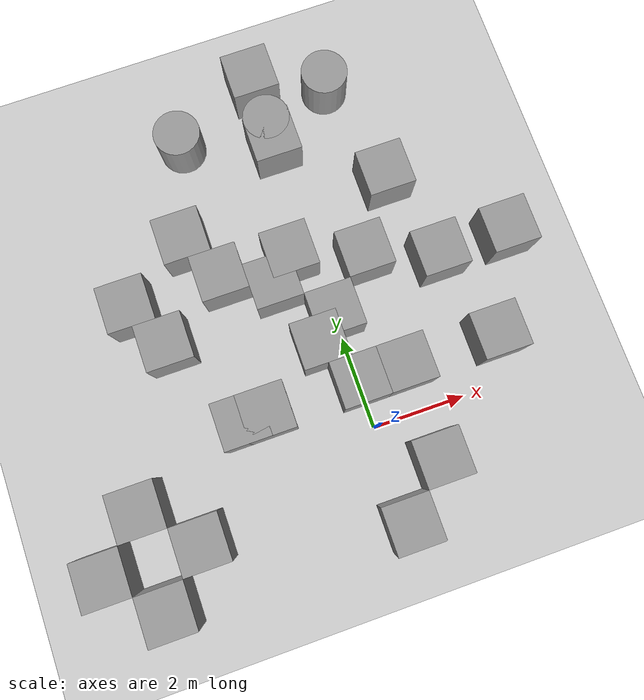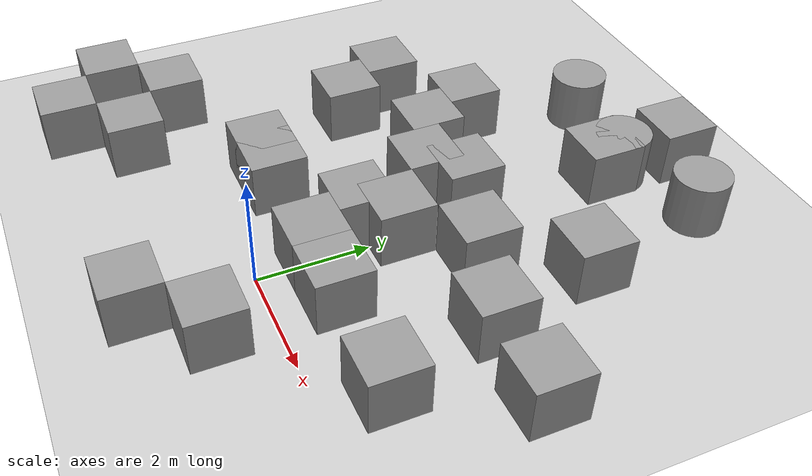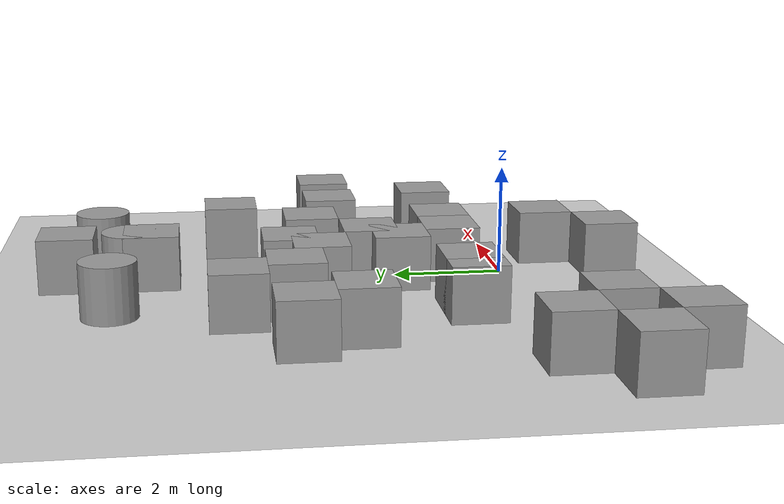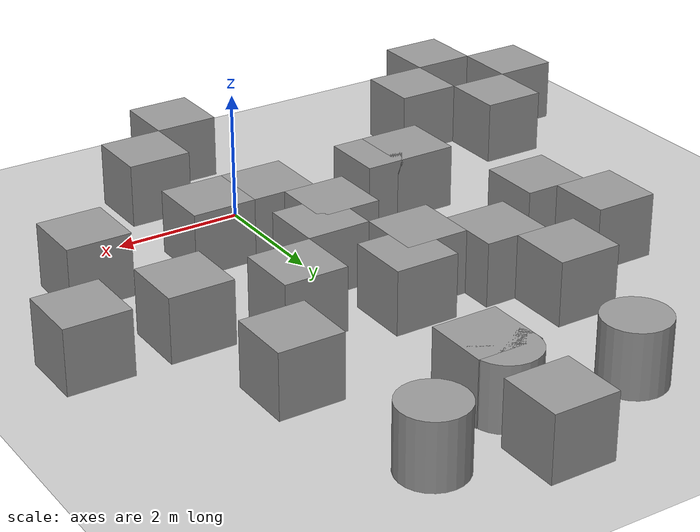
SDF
<sdf version="1.4">
 <world name="default">
  <light name="sun" type="directional">
   <pose>0 0 10 0 -0 0</pose>
   <diffuse>0.8 0.8 0.8 1</diffuse>
   <specular>0.1 0.1 0.1 1</specular>
   <attenuation>
    <range>1000</range>
    <constant>0.9</constant>
    <linear>0.01</linear>
    <quadratic>0.001</quadratic>
   </attenuation>
   <direction>-0.5 0.5 -1</direction>
  </light>
  <model name="ground_plane">
   <static>1</static>
   <link name="link">
    <collision name="collision">
     <geometry><plane><normal>0 0 1</normal><size>100 100</size></plane></geometry>
     <surface><friction><ode><mu>100</mu><mu2>50</mu2></ode></friction></surface>
    </collision>
    <visual name="visual">
     <cast_shadows>0</cast_shadows>
     <geometry><plane><normal>0 0 1</normal><size>100 100</size></plane></geometry>
     <material>
      <script><uri>file://media/materials/scripts/gazebo.material</uri><name>Gazebo/Grey</name></script>
     </material>
    </visual>
    <kinematic>1</kinematic>
    <velocity_decay><linear>0</linear><angular>0</angular></velocity_decay>
   </link>
  </model>
  <physics type="ode">
   <max_step_size>0.001</max_step_size>
   <real_time_factor>1</real_time_factor>
   <real_time_update_rate>1000</real_time_update_rate>
   <gravity>0 0 -9.8</gravity>
  </physics>
  <scene><ambient>0.4 0.4 0.4 1</ambient><background>0.7 0.7 0.7 1</background><shadows>1</shadows></scene>
  <spherical_coordinates>
   <surface_model>EARTH_WGS84</surface_model>
   <latitude_deg>0</latitude_deg>
   <longitude_deg>0</longitude_deg>
   <elevation>0</elevation>
   <heading_deg>0</heading_deg>
  </spherical_coordinates>
  <model name="unit_box_1">
   <pose>0 8 0.500001 1e-05 -0 0</pose>
   <link name="link">
    <inertial>
     <mass>1</mass>
     <inertia><ixx>1</ixx><ixy>0</ixy><ixz>0</ixz><iyy>1</iyy><iyz>0</iyz><izz>1</izz></inertia>
    </inertial>
    <collision name="collision"><geometry><box><size>8 0 1</size></box></geometry></collision>
    <visual name="visual">
     <geometry><box><size>1 1 1</size></box></geometry>
     <material>
      <script><uri>file://media/materials/scripts/gazebo.material</uri><name>Gazebo/Grey</name></script>
     </material>
    </visual>
    <velocity_decay><linear>0</linear><angular>0</angular></velocity_decay>
    <kinematic>1</kinematic>
   </link>
   <static>1</static>
  </model>
  <model name="unit_box_4">
   <pose>4 3 0.5 0 -0 0</pose>
   <link name="link">
    <inertial>
     <mass>1</mass>
     <inertia><ixx>1</ixx><ixy>0</ixy><ixz>0</ixz><iyy>1</iyy><iyz>0</iyz><izz>1</izz></inertia>
    </inertial>
    <collision name="collision"><geometry><box><size>0 10 1</size></box></geometry></collision>
    <visual name="visual">
     <geometry><box><size>1 1 1</size></box></geometry>
     <material>
      <script><uri>file://media/materials/scripts/gazebo.material</uri><name>Gazebo/Grey</name></script>
     </material>
    </visual>
    <velocity_decay><linear>0</linear><angular>0</angular></velocity_decay>
    <kinematic>1</kinematic>
   </link>
   <static>1</static>
  </model>
  <model name="unit_box_6">
   <pose>-4 4 0.5 0 -0 0</pose>
   <link name="link">
    <inertial>
     <mass>1</mass>
     <inertia><ixx>1</ixx><ixy>0</ixy><ixz>0</ixz><iyy>1</iyy><iyz>0</iyz><izz>1</izz></inertia>
    </inertial>
    <collision name="collision"><geometry><box><size>0 8 1</size></box></geometry></collision>
    <visual name="visual">
     <geometry><box><size>1 1 1</size></box></geometry>
     <material>
      <script><uri>file://media/materials/scripts/gazebo.material</uri><name>Gazebo/Grey</name></script>
     </material>
    </visual>
    <velocity_decay><linear>0</linear><angular>0</angular></velocity_decay>
    <kinematic>1</kinematic>
   </link>
   <static>1</static>
  </model>
  <model name="unit_box_7">
   <pose>0 -2 0.5 0 -0 0</pose>
   <link name="link">
    <inertial>
     <mass>1</mass>
     <inertia><ixx>1</ixx><ixy>0</ixy><ixz>0</ixz><iyy>1</iyy><iyz>0</iyz><izz>1</izz></inertia>
    </inertial>
    <collision name="collision"><geometry><box><size>8 0 1</size></box></geometry></collision>
    <visual name="visual">
     <geometry><box><size>1 1 1</size></box></geometry>
     <material>
      <script><uri>file://media/materials/scripts/gazebo.material</uri><name>Gazebo/Grey</name></script>
     </material>
    </visual>
    <velocity_decay><linear>0</linear><angular>0</angular></velocity_decay>
    <kinematic>1</kinematic>
   </link>
   <static>1</static>
  </model>
  <model name="unit_box_9">
   <pose>-6 -1 0.5 0 -0 0</pose>
   <link name="link">
    <inertial>
     <mass>1</mass>
     <inertia><ixx>1</ixx><ixy>0</ixy><ixz>0</ixz><iyy>1</iyy><iyz>0</iyz><izz>1</izz></inertia>
    </inertial>
    <collision name="collision"><geometry><box><size>0 2 1</size></box></geometry></collision>
    <visual name="visual">
     <geometry><box><size>1 1 1</size></box></geometry>
     <material>
      <script><uri>file://media/materials/scripts/gazebo.material</uri><name>Gazebo/Grey</name></script>
     </material>
    </visual>
    <velocity_decay><linear>0</linear><angular>0</angular></velocity_decay>
    <kinematic>1</kinematic>
   </link>
   <static>1</static>
  </model>
  <model name="unit_box_10">
   <pose>-5 -2 0.5 0 -0 0</pose>
   <link name="link">
    <inertial>
     <mass>1</mass>
     <inertia><ixx>1</ixx><ixy>0</ixy><ixz>0</ixz><iyy>1</iyy><iyz>0</iyz><izz>1</izz></inertia>
    </inertial>
    <collision name="collision"><geometry><box><size>2 0 1</size></box></geometry></collision>
    <visual name="visual">
     <geometry><box><size>1 1 1</size></box></geometry>
     <material>
      <script><uri>file://media/materials/scripts/gazebo.material</uri><name>Gazebo/Grey</name></script>
     </material>
    </visual>
    <velocity_decay><linear>0</linear><angular>0</angular></velocity_decay>
    <kinematic>1</kinematic>
   </link>
   <static>1</static>
  </model>
  <model name="unit_box_11">
   <pose>-5 0 0.5 0 -0 0</pose>
   <link name="link">
    <inertial>
     <mass>1</mass>
     <inertia><ixx>1</ixx><ixy>0</ixy><ixz>0</ixz><iyy>1</iyy><iyz>0</iyz><izz>1</izz></inertia>
    </inertial>
    <collision name="collision"><geometry><box><size>2 0 1</size></box></geometry></collision>
    <visual name="visual">
     <geometry><box><size>1 1 1</size></box></geometry>
     <material>
      <script><uri>file://media/materials/scripts/gazebo.material</uri><name>Gazebo/Grey</name></script>
     </material>
    </visual>
    <velocity_decay><linear>0</linear><angular>0</angular></velocity_decay>
    <kinematic>1</kinematic>
   </link>
   <static>1</static>
  </model>
  <model name="unit_box_12">
   <pose>-4 -1 0.5 0 -0 0</pose>
   <link name="link">
    <inertial>
     <mass>1</mass>
     <inertia><ixx>1</ixx><ixy>0</ixy><ixz>0</ixz><iyy>1</iyy><iyz>0</iyz><izz>1</izz></inertia>
    </inertial>
    <collision name="collision"><geometry><box><size>4 0 1</size></box></geometry></collision>
    <visual name="visual">
     <geometry><box><size>1 1 1</size></box></geometry>
     <material>
      <script><uri>file://media/materials/scripts/gazebo.material</uri><name>Gazebo/Grey</name></script>
     </material>
    </visual>
    <velocity_decay><linear>0</linear><angular>0</angular></velocity_decay>
    <kinematic>1</kinematic>
   </link>
   <static>1</static>
  </model>
  <model name="unit_box_13">
   <pose>-2 1 0.5 0 -0 0</pose>
   <link name="link">
    <inertial>
     <mass>1</mass>
     <inertia><ixx>1</ixx><ixy>0</ixy><ixz>0</ixz><iyy>1</iyy><iyz>0</iyz><izz>1</izz></inertia>
    </inertial>
    <collision name="collision"><geometry><box><size>0 4 1</size></box></geometry></collision>
    <visual name="visual">
     <geometry><box><size>1 1 1</size></box></geometry>
     <material>
      <script><uri>file://media/materials/scripts/gazebo.material</uri><name>Gazebo/Grey</name></script>
     </material>
    </visual>
    <velocity_decay><linear>0</linear><angular>0</angular></velocity_decay>
    <kinematic>1</kinematic>
   </link>
   <static>1</static>
  </model>
  <model name="unit_box_14">
   <pose>-2.5185 1 0.5 0 -0 0</pose>
   <link name="link">
    <inertial>
     <mass>1</mass>
     <inertia><ixx>1</ixx><ixy>0</ixy><ixz>0</ixz><iyy>1</iyy><iyz>0</iyz><izz>1</izz></inertia>
    </inertial>
    <collision name="collision"><geometry><box><size>1 0 1</size></box></geometry></collision>
    <visual name="visual">
     <geometry><box><size>1 1 1</size></box></geometry>
     <material>
      <script><uri>file://media/materials/scripts/gazebo.material</uri><name>Gazebo/Grey</name></script>
     </material>
    </visual>
    <velocity_decay><linear>0</linear><angular>0</angular></velocity_decay>
    <kinematic>1</kinematic>
   </link>
   <static>1</static>
  </model>
  <model name="unit_box_15">
   <pose>-3.49392 3 0.5 0 -0 0</pose>
   <link name="link">
    <inertial>
     <mass>1</mass>
     <inertia><ixx>1</ixx><ixy>0</ixy><ixz>0</ixz><iyy>1</iyy><iyz>0</iyz><izz>1</izz></inertia>
    </inertial>
    <collision name="collision"><geometry><box><size>1 0 1</size></box></geometry></collision>
    <visual name="visual">
     <geometry><box><size>1 1 1</size></box></geometry>
     <material>
      <script><uri>file://media/materials/scripts/gazebo.material</uri><name>Gazebo/Grey</name></script>
     </material>
    </visual>
    <velocity_decay><linear>0</linear><angular>0</angular></velocity_decay>
    <kinematic>1</kinematic>
   </link>
   <static>1</static>
  </model>
  <model name="unit_box_17">
   <pose>1 -1 0.5 0 -0 0</pose>
   <link name="link">
    <inertial>
     <mass>1</mass>
     <inertia><ixx>1</ixx><ixy>0</ixy><ixz>0</ixz><iyy>1</iyy><iyz>0</iyz><izz>1</izz></inertia>
    </inertial>
    <collision name="collision"><geometry><box><size>4 0 1</size></box></geometry></collision>
    <visual name="visual">
     <geometry><box><size>1 1 1</size></box></geometry>
     <material>
      <script><uri>file://media/materials/scripts/gazebo.material</uri><name>Gazebo/Grey</name></script>
     </material>
    </visual>
    <velocity_decay><linear>0</linear><angular>0</angular></velocity_decay>
    <kinematic>1</kinematic>
   </link>
   <static>1</static>
  </model>
  <model name="unit_box_18">
   <pose>1 1 0.5 0 -0 0</pose>
   <link name="link">
    <inertial>
     <mass>1</mass>
     <inertia><ixx>1</ixx><ixy>0</ixy><ixz>0</ixz><iyy>1</iyy><iyz>0</iyz><izz>1</izz></inertia>
    </inertial>
    <collision name="collision"><geometry><box><size>0 4 1</size></box></geometry></collision>
    <visual name="visual">
     <geometry><box><size>1 1 1</size></box></geometry>
     <material>
      <script><uri>file://media/materials/scripts/gazebo.material</uri><name>Gazebo/Grey</name></script>
     </material>
    </visual>
    <velocity_decay><linear>0</linear><angular>0</angular></velocity_decay>
    <kinematic>1</kinematic>
   </link>
   <static>1</static>
  </model>
  <model name="unit_box_19">
   <pose>0 6.48628 0.5 0 -0 0</pose>
   <link name="link">
    <inertial>
     <mass>1</mass>
     <inertia><ixx>1</ixx><ixy>0</ixy><ixz>0</ixz><iyy>1</iyy><iyz>0</iyz><izz>1</izz></inertia>
    </inertial>
    <collision name="collision"><geometry><box><size>6 0 1</size></box></geometry></collision>
    <visual name="visual">
     <geometry><box><size>1 1 1</size></box></geometry>
     <material>
      <script><uri>file://media/materials/scripts/gazebo.material</uri><name>Gazebo/Grey</name></script>
     </material>
    </visual>
    <velocity_decay><linear>0</linear><angular>0</angular></velocity_decay>
    <kinematic>1</kinematic>
   </link>
   <static>1</static>
  </model>
  <model name="unit_cylinder_1">
   <pose>1.50808 7.45136 0.5 0 -0 0</pose>
   <link name="link">
    <inertial>
     <mass>1</mass>
     <inertia><ixx>1</ixx><ixy>0</ixy><ixz>0</ixz><iyy>1</iyy><iyz>0</iyz><izz>1</izz></inertia>
    </inertial>
    <collision name="collision">
     <geometry><cylinder><radius>0.28875</radius><length>1</length></cylinder></geometry>
    </collision>
    <visual name="visual">
     <geometry><cylinder><radius>0.5</radius><length>1</length></cylinder></geometry>
     <material>
      <script><uri>file://media/materials/scripts/gazebo.material</uri><name>Gazebo/Grey</name></script>
     </material>
    </visual>
    <velocity_decay><linear>0</linear><angular>0</angular></velocity_decay>
    <kinematic>1</kinematic>
   </link>
   <static>1</static>
  </model>
  <model name="unit_cylinder_2">
   <pose>0 6.8851 0.5 0 -0 0</pose>
   <link name="link">
    <inertial>
     <mass>1</mass>
     <inertia><ixx>1</ixx><ixy>0</ixy><ixz>0</ixz><iyy>1</iyy><iyz>0</iyz><izz>1</izz></inertia>
    </inertial>
    <collision name="collision">
     <geometry><cylinder><radius>0.378183</radius><length>0.756367</length></cylinder></geometry>
    </collision>
    <visual name="visual">
     <geometry><cylinder><radius>0.5</radius><length>1</length></cylinder></geometry>
     <material>
      <script><uri>file://media/materials/scripts/gazebo.material</uri><name>Gazebo/Grey</name></script>
     </material>
    </visual>
    <velocity_decay><linear>0</linear><angular>0</angular></velocity_decay>
    <kinematic>1</kinematic>
   </link>
   <static>1</static>
  </model>
  <model name="unit_cylinder_3">
   <pose>-1.90364 7.16199 0.5 0 -0 0</pose>
   <link name="link">
    <inertial>
     <mass>1</mass>
     <inertia><ixx>1</ixx><ixy>0</ixy><ixz>0</ixz><iyy>1</iyy><iyz>0</iyz><izz>1</izz></inertia>
    </inertial>
    <collision name="collision">
     <geometry><cylinder><radius>0.247288</radius><length>1</length></cylinder></geometry>
    </collision>
    <visual name="visual">
     <geometry><cylinder><radius>0.5</radius><length>1</length></cylinder></geometry>
     <material>
      <script><uri>file://media/materials/scripts/gazebo.material</uri><name>Gazebo/Grey</name></script>
     </material>
    </visual>
    <velocity_decay><linear>0</linear><angular>0</angular></velocity_decay>
    <kinematic>1</kinematic>
   </link>
   <static>1</static>
  </model>
  <model name="unit_box_20">
   <pose>3 1 0.5 0 -0 0</pose>
   <link name="link">
    <inertial>
     <mass>1</mass>
     <inertia><ixx>1</ixx><ixy>0</ixy><ixz>0</ixz><iyy>1</iyy><iyz>0</iyz><izz>1</izz></inertia>
    </inertial>
    <collision name="collision"><geometry><box><size>0 4 1</size></box></geometry></collision>
    <visual name="visual">
     <geometry><box><size>1 1 1</size></box></geometry>
     <material>
      <script><uri>file://media/materials/scripts/gazebo.material</uri><name>Gazebo/Grey</name></script>
     </material>
    </visual>
    <velocity_decay><linear>0</linear><angular>0</angular></velocity_decay>
    <kinematic>1</kinematic>
   </link>
   <static>1</static>
  </model>
  <model name="unit_box_21">
   <pose>2.47486 3 0.5 0 -0 0</pose>
   <link name="link">
    <inertial>
     <mass>1</mass>
     <inertia><ixx>1</ixx><ixy>0</ixy><ixz>0</ixz><iyy>1</iyy><iyz>0</iyz><izz>1</izz></inertia>
    </inertial>
    <collision name="collision"><geometry><box><size>1 0 1</size></box></geometry></collision>
    <visual name="visual">
     <geometry><box><size>1 1 1</size></box></geometry>
     <material>
      <script><uri>file://media/materials/scripts/gazebo.material</uri><name>Gazebo/Grey</name></script>
     </material>
    </visual>
    <velocity_decay><linear>0</linear><angular>0</angular></velocity_decay>
    <kinematic>1</kinematic>
   </link>
   <static>1</static>
  </model>
  <model name="unit_box_22">
   <pose>0 1 0.5 0 -0 0</pose>
   <link name="link">
    <inertial>
     <mass>1</mass>
     <inertia><ixx>1</ixx><ixy>0</ixy><ixz>0</ixz><iyy>1</iyy><iyz>0</iyz><izz>1</izz></inertia>
    </inertial>
    <collision name="collision"><geometry><box><size>2 0 1</size></box></geometry></collision>
    <visual name="visual">
     <geometry><box><size>1 1 1</size></box></geometry>
     <material>
      <script><uri>file://media/materials/scripts/gazebo.material</uri><name>Gazebo/Grey</name></script>
     </material>
    </visual>
    <velocity_decay><linear>0</linear><angular>0</angular></velocity_decay>
    <kinematic>1</kinematic>
   </link>
   <static>1</static>
  </model>
  <model name="unit_box_23">
   <pose>0 2.50196 0.5 0 -0 0</pose>
   <link name="link">
    <inertial>
     <mass>1</mass>
     <inertia><ixx>1</ixx><ixy>0</ixy><ixz>0</ixz><iyy>1</iyy><iyz>0</iyz><izz>1</izz></inertia>
    </inertial>
    <collision name="collision"><geometry><box><size>0 1 1</size></box></geometry></collision>
    <visual name="visual">
     <geometry><box><size>1 1 1</size></box></geometry>
     <material>
      <script><uri>file://media/materials/scripts/gazebo.material</uri><name>Gazebo/Grey</name></script>
     </material>
    </visual>
    <velocity_decay><linear>0</linear><angular>0</angular></velocity_decay>
    <kinematic>1</kinematic>
   </link>
   <static>1</static>
  </model>
  <model name="unit_box_24">
   <pose>-0.502878 2 0.5 0 -0 0</pose>
   <link name="link">
    <inertial>
     <mass>1</mass>
     <inertia><ixx>1</ixx><ixy>0</ixy><ixz>0</ixz><iyy>1</iyy><iyz>0</iyz><izz>1</izz></inertia>
    </inertial>
    <collision name="collision"><geometry><box><size>1 0 1</size></box></geometry></collision>
    <visual name="visual">
     <geometry><box><size>1 1 1</size></box></geometry>
     <material>
      <script><uri>file://media/materials/scripts/gazebo.material</uri><name>Gazebo/Grey</name></script>
     </material>
    </visual>
    <velocity_decay><linear>0</linear><angular>0</angular></velocity_decay>
    <kinematic>1</kinematic>
   </link>
   <static>1</static>
  </model>
  <model name="unit_box_25">
   <pose>2 5 0.5 0 -0 0</pose>
   <link name="link">
    <inertial>
     <mass>1</mass>
     <inertia><ixx>1</ixx><ixy>0</ixy><ixz>0</ixz><iyy>1</iyy><iyz>0</iyz><izz>1</izz></inertia>
    </inertial>
    <collision name="collision"><geometry><box><size>4 0 1</size></box></geometry></collision>
    <visual name="visual">
     <geometry><box><size>1 1 1</size></box></geometry>
     <material>
      <script><uri>file://media/materials/scripts/gazebo.material</uri><name>Gazebo/Grey</name></script>
     </material>
    </visual>
    <velocity_decay><linear>0</linear><angular>0</angular></velocity_decay>
    <kinematic>1</kinematic>
   </link>
   <static>1</static>
  </model>
  <model name="unit_box_27">
   <pose>-2 4 0.5 0 -0 0</pose>
   <link name="link">
    <inertial>
     <mass>1</mass>
     <inertia><ixx>1</ixx><ixy>0</ixy><ixz>0</ixz><iyy>1</iyy><iyz>0</iyz><izz>1</izz></inertia>
    </inertial>
    <collision name="collision"><geometry><box><size>0 2 1</size></box></geometry></collision>
    <visual name="visual">
     <geometry><box><size>1 1 1</size></box></geometry>
     <material>
      <script><uri>file://media/materials/scripts/gazebo.material</uri><name>Gazebo/Grey</name></script>
     </material>
    </visual>
    <velocity_decay><linear>0</linear><angular>0</angular></velocity_decay>
    <kinematic>1</kinematic>
   </link>
   <static>1</static>
  </model>
  <model name="unit_box_28">
   <pose>1 3.50776 0.5 0 -0 0</pose>
   <link name="link">
    <inertial>
     <mass>1</mass>
     <inertia><ixx>1</ixx><ixy>0</ixy><ixz>0</ixz><iyy>1</iyy><iyz>0</iyz><izz>1</izz></inertia>
    </inertial>
    <collision name="collision"><geometry><box><size>0 1 1</size></box></geometry></collision>
    <visual name="visual">
     <geometry><box><size>1 1 1</size></box></geometry>
     <material>
      <script><uri>file://media/materials/scripts/gazebo.material</uri><name>Gazebo/Grey</name></script>
     </material>
    </visual>
    <velocity_decay><linear>0</linear><angular>0</angular></velocity_decay>
    <kinematic>1</kinematic>
   </link>
   <static>1</static>
  </model>
  <model name="unit_box_29">
   <pose>-0.47826 4 0.5 0 -0 0</pose>
   <link name="link">
    <inertial>
     <mass>1</mass>
     <inertia><ixx>1</ixx><ixy>0</ixy><ixz>0</ixz><iyy>1</iyy><iyz>0</iyz><izz>1</izz></inertia>
    </inertial>
    <collision name="collision"><geometry><box><size>1 0 1</size></box></geometry></collision>
    <visual name="visual">
     <geometry><box><size>1 1 1</size></box></geometry>
     <material>
      <script><uri>file://media/materials/scripts/gazebo.material</uri><name>Gazebo/Grey</name></script>
     </material>
    </visual>
    <velocity_decay><linear>0</linear><angular>0</angular></velocity_decay>
    <kinematic>1</kinematic>
   </link>
   <static>1</static>
  </model>
  <model name="unit_box_30">
   <pose>-1 3.48641 0.5 0 -0 0</pose>
   <link name="link">
    <inertial>
     <mass>1</mass>
     <inertia><ixx>1</ixx><ixy>0</ixy><ixz>0</ixz><iyy>1</iyy><iyz>0</iyz><izz>1</izz></inertia>
    </inertial>
    <collision name="collision"><geometry><box><size>0 1 1</size></box></geometry></collision>
    <visual name="visual">
     <geometry><box><size>1 1 1</size></box></geometry>
     <material>
      <script><uri>file://media/materials/scripts/gazebo.material</uri><name>Gazebo/Grey</name></script>
     </material>
    </visual>
    <velocity_decay><linear>0</linear><angular>0</angular></velocity_decay>
    <kinematic>1</kinematic>
   </link>
   <static>1</static>
  </model>
  <model name="unit_box_31">
   <pose>-2.50299 5 0.5 0 -0 0</pose>
   <link name="link">
    <inertial>
     <mass>1</mass>
     <inertia><ixx>1</ixx><ixy>0</ixy><ixz>0</ixz><iyy>1</iyy><iyz>0</iyz><izz>1</izz></inertia>
    </inertial>
    <collision name="collision"><geometry><box><size>1 0 1</size></box></geometry></collision>
    <visual name="visual">
     <geometry><box><size>1 1 1</size></box></geometry>
     <material>
      <script><uri>file://media/materials/scripts/gazebo.material</uri><name>Gazebo/Grey</name></script>
     </material>
    </visual>
    <velocity_decay><linear>0</linear><angular>0</angular></velocity_decay>
    <kinematic>1</kinematic>
   </link>
   <static>1</static>
  </model>
 </world>
</sdf>
